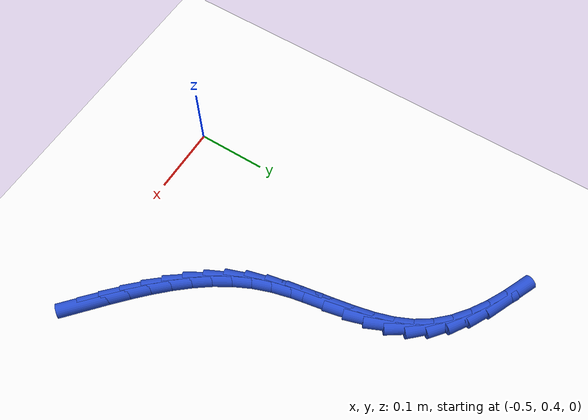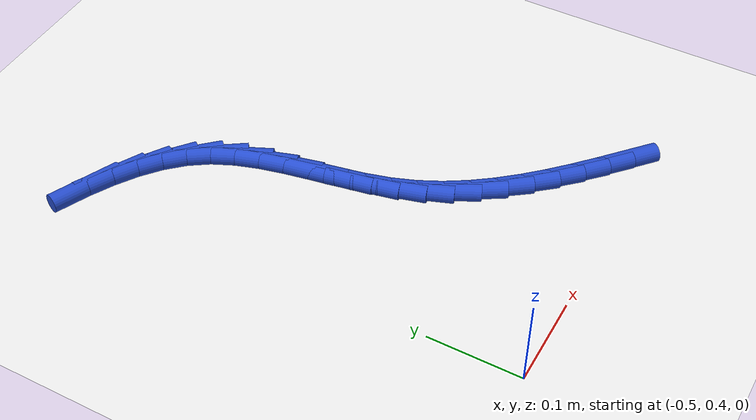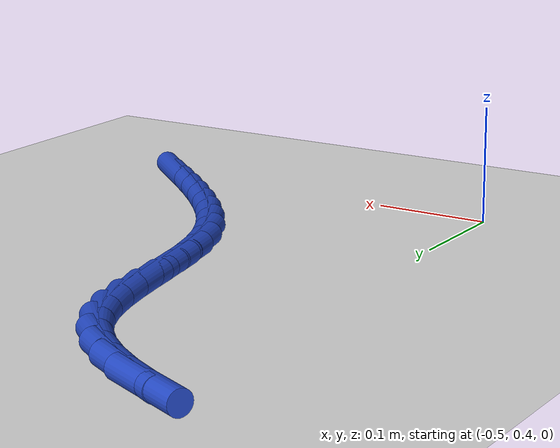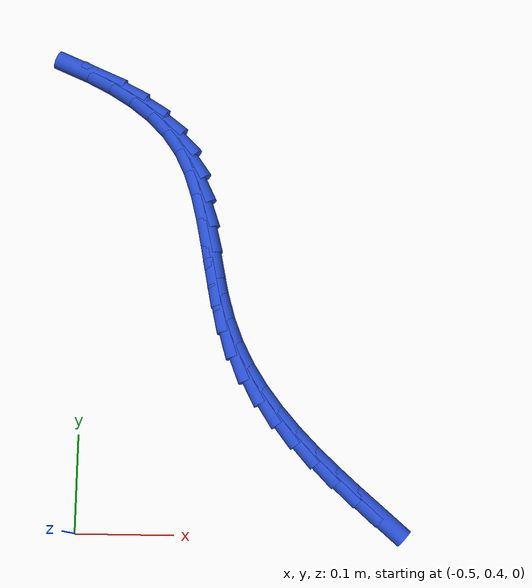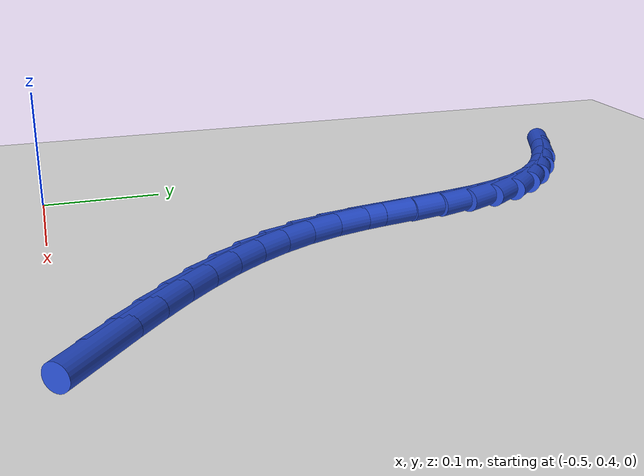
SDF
<sdf version="1.6">
 <world name="default">
  <model name="ground_plane">
   <static>1</static>
   <link name="link">
    <collision name="collision">
     <geometry><plane><normal>0 0 1</normal><size>100 100</size></plane></geometry>
     <surface><friction><ode><mu>100</mu><mu2>50</mu2></ode></friction></surface>
    </collision>
    <visual name="visual">
     <cast_shadows>0</cast_shadows>
     <geometry><plane><normal>0 0 1</normal><size>100 100</size></plane></geometry>
     <material>
      <script><uri>file://media/materials/scripts/gazebo.material</uri><name>Gazebo/WhiteGlow</name></script>
     </material>
    </visual>
   </link>
  </model>
  <model name="line">
   <link name="link_18">
    <pose>-0.19867087329595826 0.4258078085915834 0.01 0 1.57 -0.7204317749395995</pose>
    <collision name="collision">
     <geometry><cylinder><radius>0.01</radius><length>0.08</length></cylinder></geometry>
    </collision>
    <visual name="visual">
     <material>
      <script><name>Gazebo/Blue</name><uri>file://media/materials/scripts/gazebo.material</uri></script>
     </material>
     <geometry><cylinder><radius>0.01</radius><length>0.08</length></cylinder></geometry>
    </visual>
   </link>
   <link name="link_19">
    <pose>-0.22017365751464374 0.4446836429539336 0.01 0 1.57 -0.7396591355670677</pose>
    <collision name="collision">
     <geometry><cylinder><radius>0.01</radius><length>0.08</length></cylinder></geometry>
    </collision>
    <visual name="visual">
     <material>
      <script><name>Gazebo/Blue</name><uri>file://media/materials/scripts/gazebo.material</uri></script>
     </material>
     <geometry><cylinder><radius>0.01</radius><length>0.08</length></cylinder></geometry>
    </visual>
   </link>
   <link name="link_20">
    <pose>-0.24119264496336543 0.46386272647455606 0.01 0 1.57 -0.7701618664448675</pose>
    <collision name="collision">
     <geometry><cylinder><radius>0.01</radius><length>0.08</length></cylinder></geometry>
    </collision>
    <visual name="visual">
     <material>
      <script><name>Gazebo/Blue</name><uri>file://media/materials/scripts/gazebo.material</uri></script>
     </material>
     <geometry><cylinder><radius>0.01</radius><length>0.08</length></cylinder></geometry>
    </visual>
   </link>
   <link name="link_21">
    <pose>-0.2614372010754609 0.4834995904031115 0.01 0 1.57 -0.8125211470441647</pose>
    <collision name="collision">
     <geometry><cylinder><radius>0.01</radius><length>0.08</length></cylinder></geometry>
    </collision>
    <visual name="visual">
     <material>
      <script><name>Gazebo/Blue</name><uri>file://media/materials/scripts/gazebo.material</uri></script>
     </material>
     <geometry><cylinder><radius>0.01</radius><length>0.08</length></cylinder></geometry>
    </visual>
   </link>
   <link name="link_22">
    <pose>-0.28061669128426786 0.5037487659892605 0.01 0 1.57 -0.8674034542908987</pose>
    <collision name="collision">
     <geometry><cylinder><radius>0.01</radius><length>0.08</length></cylinder></geometry>
    </collision>
    <visual name="visual">
     <material>
      <script><name>Gazebo/Blue</name><uri>file://media/materials/scripts/gazebo.material</uri></script>
     </material>
     <geometry><cylinder><radius>0.01</radius><length>0.08</length></cylinder></geometry>
    </visual>
   </link>
   <link name="link_23">
    <pose>-0.2984404810231238 0.5247647844826637 0.01 0 1.57 -0.9353838550116299</pose>
    <collision name="collision">
     <geometry><cylinder><radius>0.01</radius><length>0.08</length></cylinder></geometry>
    </collision>
    <visual name="visual">
     <material>
      <script><name>Gazebo/Blue</name><uri>file://media/materials/scripts/gazebo.material</uri></script>
     </material>
     <geometry><cylinder><radius>0.01</radius><length>0.08</length></cylinder></geometry>
    </visual>
   </link>
   <link name="link_24">
    <pose>-0.31461793572536656 0.5467021771329813 0.01 0 1.57 -1.0166723833138167</pose>
    <collision name="collision">
     <geometry><cylinder><radius>0.01</radius><length>0.08</length></cylinder></geometry>
    </collision>
    <visual name="visual">
     <material>
      <script><name>Gazebo/Blue</name><uri>file://media/materials/scripts/gazebo.material</uri></script>
     </material>
     <geometry><cylinder><radius>0.01</radius><length>0.08</length></cylinder></geometry>
    </visual>
   </link>
   <link name="link_25">
    <pose>-0.3288584208243336 0.5697154751898742 0.01 0 1.57 -1.1107515384500188</pose>
    <collision name="collision">
     <geometry><cylinder><radius>0.01</radius><length>0.08</length></cylinder></geometry>
    </collision>
    <visual name="visual">
     <material>
      <script><name>Gazebo/Blue</name><uri>file://media/materials/scripts/gazebo.material</uri></script>
     </material>
     <geometry><cylinder><radius>0.01</radius><length>0.08</length></cylinder></geometry>
    </visual>
   </link>
   <link name="link_26">
    <pose>-0.34087130175336267 0.593959209903003 0.01 0 1.57 -1.2155780729853922</pose>
    <collision name="collision">
     <geometry><cylinder><radius>0.01</radius><length>0.08</length></cylinder></geometry>
    </collision>
    <visual name="visual">
     <material>
      <script><name>Gazebo/Blue</name><uri>file://media/materials/scripts/gazebo.material</uri></script>
     </material>
     <geometry><cylinder><radius>0.01</radius><length>0.08</length></cylinder></geometry>
    </visual>
   </link>
   <link name="link_27">
    <pose>-0.350376151693079 0.619581969996678 0.01 0 1.57 -1.309947642911225</pose>
    <collision name="collision">
     <geometry><cylinder><radius>0.01</radius><length>0.08</length></cylinder></geometry>
    </collision>
    <visual name="visual">
     <material>
      <script><name>Gazebo/Blue</name><uri>file://media/materials/scripts/gazebo.material</uri></script>
     </material>
     <geometry><cylinder><radius>0.01</radius><length>0.08</length></cylinder></geometry>
    </visual>
   </link>
   <link name="link_28">
    <pose>-0.3575520145590481 0.6464648594688834 0.01 0 1.57 -1.3688499180485438</pose>
    <collision name="collision">
     <geometry><cylinder><radius>0.01</radius><length>0.08</length></cylinder></geometry>
    </collision>
    <visual name="visual">
     <material>
      <script><name>Gazebo/Blue</name><uri>file://media/materials/scripts/gazebo.material</uri></script>
     </material>
     <geometry><cylinder><radius>0.01</radius><length>0.08</length></cylinder></geometry>
    </visual>
   </link>
   <link name="link_29">
    <pose>-0.36321380648351437 0.674118803995187 0.01 0 1.57 -1.393199049766554</pose>
    <collision name="collision">
     <geometry><cylinder><radius>0.01</radius><length>0.08</length></cylinder></geometry>
    </collision>
    <visual name="visual">
     <material>
      <script><name>Gazebo/Blue</name><uri>file://media/materials/scripts/gazebo.material</uri></script>
     </material>
     <geometry><cylinder><radius>0.01</radius><length>0.08</length></cylinder></geometry>
    </visual>
   </link>
   <link name="link_30">
    <pose>-0.3682231034023978 0.7020275658566973 0.01 0 1.57 -1.3842431241705004</pose>
    <collision name="collision">
     <geometry><cylinder><radius>0.01</radius><length>0.08</length></cylinder></geometry>
    </collision>
    <visual name="visual">
     <material>
      <script><name>Gazebo/Blue</name><uri>file://media/materials/scripts/gazebo.material</uri></script>
     </material>
     <geometry><cylinder><radius>0.01</radius><length>0.08</length></cylinder></geometry>
    </visual>
   </link>
   <link name="link_31">
    <pose>-0.37344148125161736 0.7296749073345218 0.01 0 1.57 -1.3408782997451967</pose>
    <collision name="collision">
     <geometry><cylinder><radius>0.01</radius><length>0.08</length></cylinder></geometry>
    </collision>
    <visual name="visual">
     <material>
      <script><name>Gazebo/Blue</name><uri>file://media/materials/scripts/gazebo.material</uri></script>
     </material>
     <geometry><cylinder><radius>0.01</radius><length>0.08</length></cylinder></geometry>
    </visual>
   </link>
   <link name="link_32">
    <pose>-0.3797305159670934 0.7565445907097692 0.01 0 1.57 -1.2597810834226935</pose>
    <collision name="collision">
     <geometry><cylinder><radius>0.01</radius><length>0.08</length></cylinder></geometry>
    </collision>
    <visual name="visual">
     <material>
      <script><name>Gazebo/Blue</name><uri>file://media/materials/scripts/gazebo.material</uri></script>
     </material>
     <geometry><cylinder><radius>0.01</radius><length>0.08</length></cylinder></geometry>
    </visual>
   </link>
   <link name="link_33">
    <pose>-0.38795178348474474 0.7821203782635461 0.01 0 1.57 -1.1367832281377155</pose>
    <collision name="collision">
     <geometry><cylinder><radius>0.01</radius><length>0.08</length></cylinder></geometry>
    </collision>
    <visual name="visual">
     <material>
      <script><name>Gazebo/Blue</name><uri>file://media/materials/scripts/gazebo.material</uri></script>
     </material>
     <geometry><cylinder><radius>0.01</radius><length>0.08</length></cylinder></geometry>
    </visual>
   </link>
   <link name="link_34">
    <pose>-0.3989668597404914 0.8058860322769613 0.01 0 1.57 -0.973807297113083</pose>
    <collision name="collision">
     <geometry><cylinder><radius>0.01</radius><length>0.08</length></cylinder></geometry>
    </collision>
    <visual name="visual">
     <material>
      <script><name>Gazebo/Blue</name><uri>file://media/materials/scripts/gazebo.material</uri></script>
     </material>
     <geometry><cylinder><radius>0.01</radius><length>0.08</length></cylinder></geometry>
    </visual>
   </link>
   <link name="link_35">
    <pose>-0.41356458634066595 0.8273619419473335 0.01 0 1.57 -0.8120310284484058</pose>
    <collision name="collision">
     <geometry><cylinder><radius>0.01</radius><length>0.08</length></cylinder></geometry>
    </collision>
    <visual name="visual">
     <material>
      <script><name>Gazebo/Blue</name><uri>file://media/materials/scripts/gazebo.material</uri></script>
     </material>
     <geometry><cylinder><radius>0.01</radius><length>0.08</length></cylinder></geometry>
    </visual>
   </link>
   <link name="link_36">
    <pose>-0.43169894286518734 0.8464889089740674 0.01 0 1.57 -0.6780404586303507</pose>
    <collision name="collision">
     <geometry><cylinder><radius>0.01</radius><length>0.08</length></cylinder></geometry>
    </collision>
    <visual name="visual">
     <material>
      <script><name>Gazebo/Blue</name><uri>file://media/materials/scripts/gazebo.material</uri></script>
     </material>
     <geometry><cylinder><radius>0.01</radius><length>0.08</length></cylinder></geometry>
    </visual>
   </link>
   <link name="link_37">
    <pose>-0.4527903139765916 0.863476438108354 0.01 0 1.57 -0.5707481826740988</pose>
    <collision name="collision">
     <geometry><cylinder><radius>0.01</radius><length>0.08</length></cylinder></geometry>
    </collision>
    <visual name="visual">
     <material>
      <script><name>Gazebo/Blue</name><uri>file://media/materials/scripts/gazebo.material</uri></script>
     </material>
     <geometry><cylinder><radius>0.01</radius><length>0.08</length></cylinder></geometry>
    </visual>
   </link>
   <link name="link_38">
    <pose>-0.47625041418115344 0.8785384001426848 0.01 0 1.57 -0.48651620027274195</pose>
    <collision name="collision">
     <geometry><cylinder><radius>0.01</radius><length>0.08</length></cylinder></geometry>
    </collision>
    <visual name="visual">
     <material>
      <script><name>Gazebo/Blue</name><uri>file://media/materials/scripts/gazebo.material</uri></script>
     </material>
     <geometry><cylinder><radius>0.01</radius><length>0.08</length></cylinder></geometry>
    </visual>
   </link>
   <link name="link_39">
    <pose>-0.5014909579851474 0.8918886658695505 0.01 0 1.57 -0.4215230936939067</pose>
    <collision name="collision">
     <geometry><cylinder><radius>0.01</radius><length>0.08</length></cylinder></geometry>
    </collision>
    <visual name="visual">
     <material>
      <script><name>Gazebo/Blue</name><uri>file://media/materials/scripts/gazebo.material</uri></script>
     </material>
     <geometry><cylinder><radius>0.01</radius><length>0.08</length></cylinder></geometry>
    </visual>
   </link>
  </model>
 </world>
</sdf>
